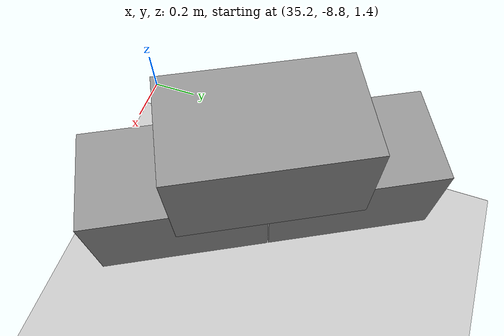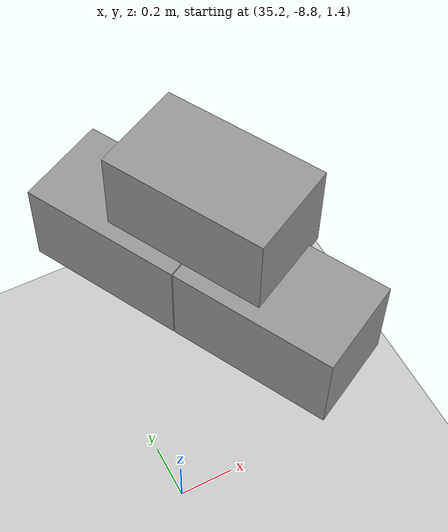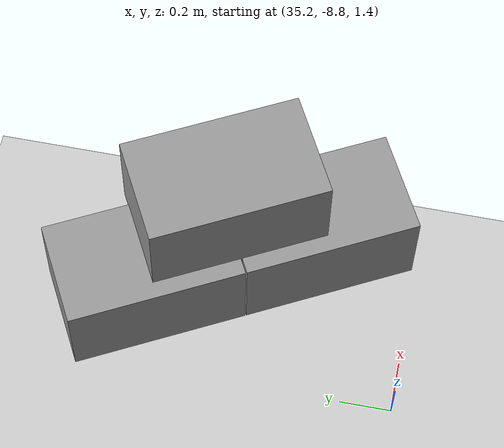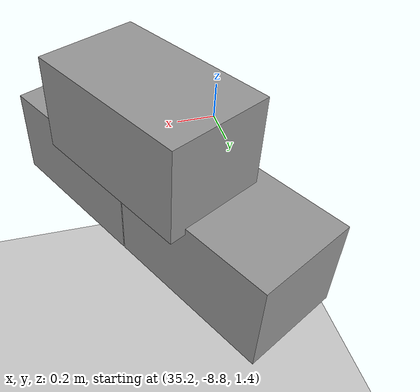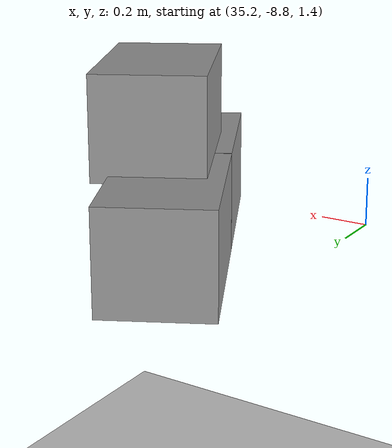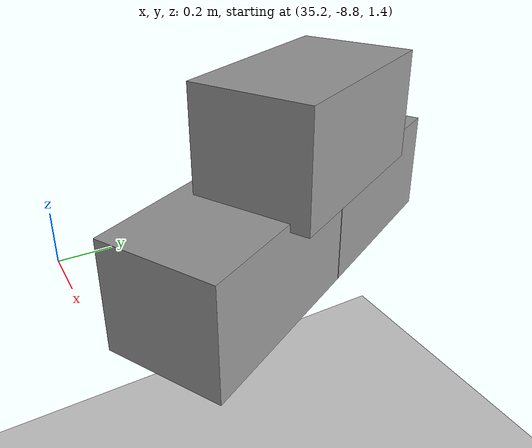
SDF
<sdf version="1.7">
 <world name="default">
  <model name="ground_plane">
   <static>1</static>
   <link name="link">
    <collision name="collision">
     <geometry><plane><normal>0 0 1</normal><size>100 100</size></plane></geometry>
     <surface>
      <contact><collide_bitmask>65535</collide_bitmask></contact>
      <friction><ode><mu>100</mu><mu2>50</mu2></ode></friction>
     </surface>
    </collision>
    <visual name="visual">
     <cast_shadows>0</cast_shadows>
     <geometry><plane><normal>0 0 1</normal><size>100 100</size></plane></geometry>
     <material>
      <script><uri>file://media/materials/scripts/gazebo.material</uri><name>Gazebo/Grey</name></script>
     </material>
    </visual>
   </link>
  </model>
  <model name="Add_Box_clone_clone_3_clone_6">
   <link name="link">
    <inertial>
     <mass>1</mass>
     <inertia>
      <ixx>0.166667</ixx>
      <ixy>0</ixy>
      <ixz>0</ixz>
      <iyy>0.166667</iyy>
      <iyz>0</iyz>
      <izz>0.166667</izz>
     </inertia>
    </inertial>
    <kinematic>1</kinematic>
    <gravity>0</gravity>
    <visual name="visual">
     <geometry><box><size>0.686 0.406 0.381</size></box></geometry>
     <material>
      <script><name>Gazebo/Grey</name><uri>file://media/materials/scripts/gazebo.material</uri></script>
      <shader type="pixel"><normal_map>__default__</normal_map></shader>
      <ambient>0.3 0.3 0.3 1</ambient>
      <diffuse>0.7 0.7 0.7 1</diffuse>
      <specular>0.01 0.01 0.01 1</specular>
      <emissive>0 0 0 1</emissive>
     </material>
    </visual>
    <collision name="collision">
     <geometry><box><size>1 1 1</size></box></geometry>
     <surface>
      <friction>
       <ode><mu>1</mu><mu2>1</mu2><fdir1>0 0 0</fdir1><slip1>0</slip1><slip2>0</slip2></ode>
       <torsional>
        <coefficient>1</coefficient>
        <patch_radius>0</patch_radius>
        <surface_radius>0</surface_radius>
        <use_patch_radius>1</use_patch_radius>
        <ode><slip>0</slip></ode>
       </torsional>
      </friction>
      <bounce><restitution_coefficient>0</restitution_coefficient><threshold>1e+06</threshold></bounce>
      <contact>
       <collide_without_contact>0</collide_without_contact>
       <collide_without_contact_bitmask>1</collide_without_contact_bitmask>
       <collide_bitmask>1</collide_bitmask>
       <ode>
        <soft_cfm>0</soft_cfm>
        <soft_erp>0.2</soft_erp>
        <kp>1e+13</kp>
        <kd>1</kd>
        <max_vel>0.01</max_vel>
        <min_depth>0</min_depth>
       </ode>
       <bullet>
        <split_impulse>1</split_impulse>
        <split_impulse_penetration_threshold>-0.01</split_impulse_penetration_threshold>
        <soft_cfm>0</soft_cfm>
        <soft_erp>0.2</soft_erp>
        <kp>1e+13</kp>
        <kd>1</kd>
       </bullet>
      </contact>
     </surface>
    </collision>
   </link>
   <link name="link_clone">
    <inertial>
     <mass>1</mass>
     <inertia>
      <ixx>0.166667</ixx>
      <ixy>0</ixy>
      <ixz>0</ixz>
      <iyy>0.166667</iyy>
      <iyz>0</iyz>
      <izz>0.166667</izz>
     </inertia>
    </inertial>
    <pose>-0.343354 -0.063316 0.354303 1e-05 -0 0</pose>
    <gravity>0</gravity>
    <visual name="visual">
     <geometry><box><size>0.686 0.406 0.381</size></box></geometry>
     <material>
      <script><name>Gazebo/Grey</name><uri>file://media/materials/scripts/gazebo.material</uri></script>
      <shader type="pixel"><normal_map>__default__</normal_map></shader>
      <ambient>0.3 0.3 0.3 1</ambient>
      <diffuse>0.7 0.7 0.7 1</diffuse>
      <specular>0.01 0.01 0.01 1</specular>
      <emissive>0 0 0 1</emissive>
     </material>
    </visual>
    <collision name="collision">
     <geometry><box><size>1 1 1</size></box></geometry>
     <surface>
      <friction>
       <ode><mu>1</mu><mu2>1</mu2><fdir1>0 0 0</fdir1><slip1>0</slip1><slip2>0</slip2></ode>
       <torsional>
        <coefficient>1</coefficient>
        <patch_radius>0</patch_radius>
        <surface_radius>0</surface_radius>
        <use_patch_radius>1</use_patch_radius>
        <ode><slip>0</slip></ode>
       </torsional>
      </friction>
      <bounce><restitution_coefficient>0</restitution_coefficient><threshold>1e+06</threshold></bounce>
      <contact>
       <collide_without_contact>0</collide_without_contact>
       <collide_without_contact_bitmask>1</collide_without_contact_bitmask>
       <collide_bitmask>1</collide_bitmask>
       <ode>
        <soft_cfm>0</soft_cfm>
        <soft_erp>0.2</soft_erp>
        <kp>1e+13</kp>
        <kd>1</kd>
        <max_vel>0.01</max_vel>
        <min_depth>0</min_depth>
       </ode>
       <bullet>
        <split_impulse>1</split_impulse>
        <split_impulse_penetration_threshold>-0.01</split_impulse_penetration_threshold>
        <soft_cfm>0</soft_cfm>
        <soft_erp>0.2</soft_erp>
        <kp>1e+13</kp>
        <kd>1</kd>
       </bullet>
      </contact>
     </surface>
    </collision>
   </link>
   <link name="link_clone_clone">
    <inertial>
     <mass>1</mass>
     <inertia>
      <ixx>0.166667</ixx>
      <ixy>0</ixy>
      <ixz>0</ixz>
      <iyy>0.166667</iyy>
      <iyz>0</iyz>
      <izz>0.166667</izz>
     </inertia>
    </inertial>
    <pose>-0.690786 -0.000183 -1e-05 2e-05 -0 0</pose>
    <gravity>0</gravity>
    <visual name="visual">
     <geometry><box><size>0.686 0.406 0.381</size></box></geometry>
     <material>
      <script><name>Gazebo/Grey</name><uri>file://media/materials/scripts/gazebo.material</uri></script>
      <shader type="pixel"><normal_map>__default__</normal_map></shader>
      <ambient>0.3 0.3 0.3 1</ambient>
      <diffuse>0.7 0.7 0.7 1</diffuse>
      <specular>0.01 0.01 0.01 1</specular>
      <emissive>0 0 0 1</emissive>
     </material>
    </visual>
    <collision name="collision">
     <geometry><box><size>1 1 1</size></box></geometry>
     <surface>
      <friction>
       <ode><mu>1</mu><mu2>1</mu2><fdir1>0 0 0</fdir1><slip1>0</slip1><slip2>0</slip2></ode>
       <torsional>
        <coefficient>1</coefficient>
        <patch_radius>0</patch_radius>
        <surface_radius>0</surface_radius>
        <use_patch_radius>1</use_patch_radius>
        <ode><slip>0</slip></ode>
       </torsional>
      </friction>
      <bounce><restitution_coefficient>0</restitution_coefficient><threshold>1e+06</threshold></bounce>
      <contact>
       <collide_without_contact>0</collide_without_contact>
       <collide_without_contact_bitmask>1</collide_without_contact_bitmask>
       <collide_bitmask>1</collide_bitmask>
       <ode>
        <soft_cfm>0</soft_cfm>
        <soft_erp>0.2</soft_erp>
        <kp>1e+13</kp>
        <kd>1</kd>
        <max_vel>0.01</max_vel>
        <min_depth>0</min_depth>
       </ode>
       <bullet>
        <split_impulse>1</split_impulse>
        <split_impulse_penetration_threshold>-0.01</split_impulse_penetration_threshold>
        <soft_cfm>0</soft_cfm>
        <soft_erp>0.2</soft_erp>
        <kp>1e+13</kp>
        <kd>1</kd>
       </bullet>
      </contact>
     </surface>
    </collision>
   </link>
   <static>0</static>
   <pose>35.4973 -7.77901 1.61518 0 -0 2.05448</pose>
  </model>
 </world>
</sdf>
